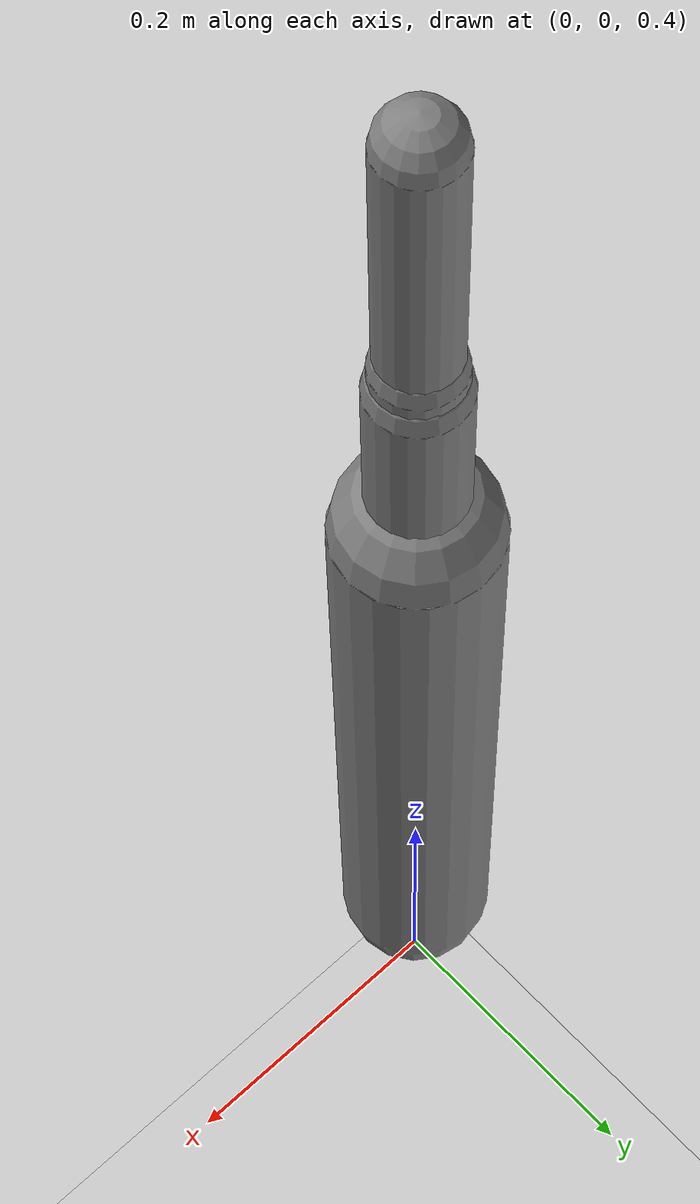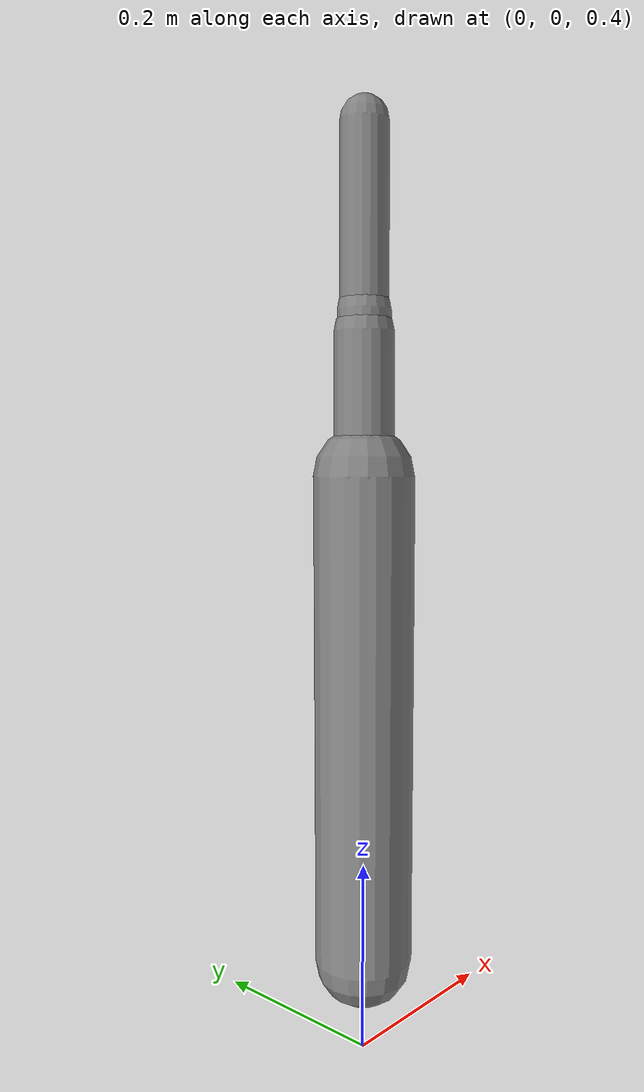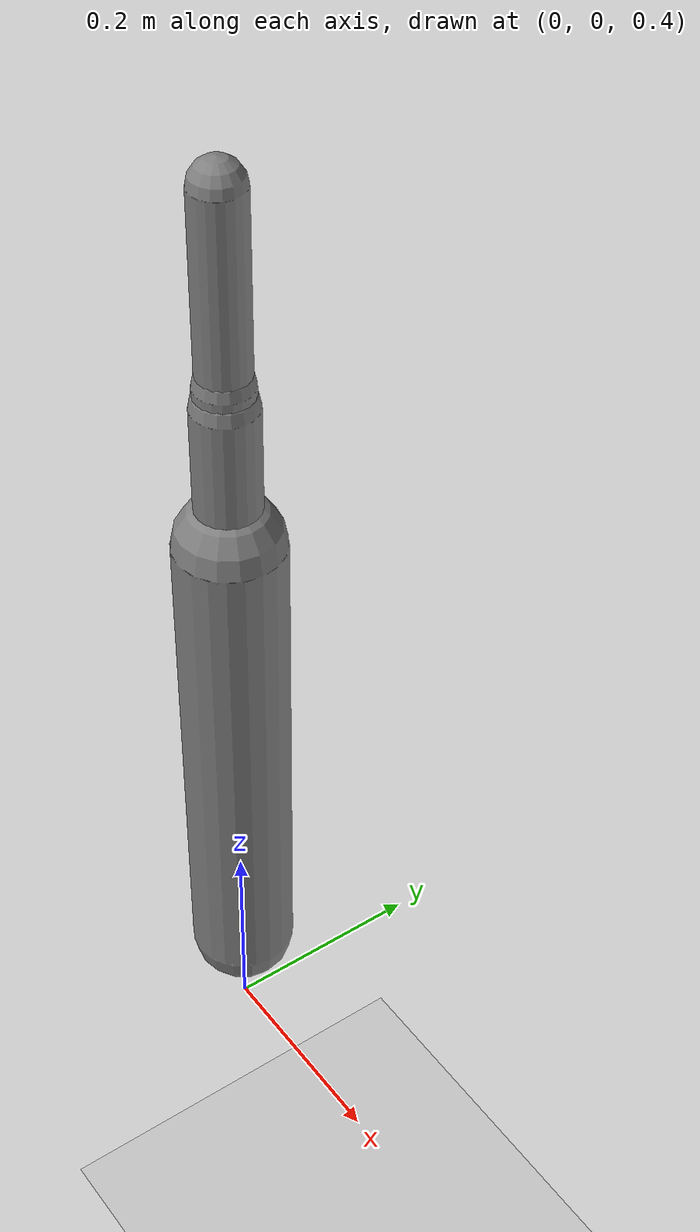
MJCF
<?xml version='1.0' encoding='UTF-8'?>
<mujoco model="RobotModel">
  <option gravity="0 0 -9.81" timestep="0.002" solver="CG" iterations="500" integrator="Euler"/>
  <worldbody>
    <geom name="Floor" type="plane" size="10 10 0.1" pos="0 0 0" rgba="0.8 0.8 0.8 1"/>
    <body name="Limb0" pos="0 0 0.5">
      <geom type="capsule" fromto="0 0 0 0 0 0.5" size="0.05" density="1000" contype="1" conaffinity="1"/>
      <body name="Limb0_628137e8" pos="0 0 0.5">
        <geom type="capsule" fromto="0 0 0 0 0 0.1583965440686873" size="0.026274507455519416" density="500.0" contype="1" conaffinity="1"/>
        <body name="Limb1_628137e8" pos="0 0 0.1583965440686873">
          <geom type="capsule" fromto="0 0 0 0 0 0.17192740146968158" size="0.023684349766088346" density="500.0" contype="1" conaffinity="1"/>
          <joint name="Joint_Limb0_628137e8_Limb1_628137e8_0" type="hinge" axis="1 0 0" range="-60 60"/>
        </body>
        <joint name="Joint_Limb0_Limb0_628137e8_0" type="hinge" axis="0 1 0" range="-60 60"/>
      </body>
      <body name="Limb2_628137e8" pos="0 0 0.5">
        <geom type="capsule" fromto="0 0 0 0 0 0.13495952287163845" size="0.021459868258517" density="500.0" contype="1" conaffinity="1"/>
        <joint name="Joint_Limb0_Limb2_628137e8_0" type="hinge" axis="0 1 0" range="-60 60"/>
      </body>
      <body name="Limb3_628137e8" pos="0 0 0.5">
        <geom type="capsule" fromto="0 0 0 0 0 0.13807559383432266" size="0.029450850574752115" density="500.0" contype="1" conaffinity="1"/>
        <joint name="Joint_Limb0_Limb3_628137e8_0" type="hinge" axis="0 1 0" range="-60 60"/>
      </body>
    </body>
  </worldbody>
  <actuator>
    <position name="position_Actuator_Joint_Limb0_Limb0_628137e8_0" joint="Joint_Limb0_Limb0_628137e8_0" gear="1.0"/>
    <position name="position_Actuator_Joint_Limb0_628137e8_Limb1_628137e8_0" joint="Joint_Limb0_628137e8_Limb1_628137e8_0" gear="1.0"/>
    <position name="position_Actuator_Joint_Limb0_Limb2_628137e8_0" joint="Joint_Limb0_Limb2_628137e8_0" gear="1.0"/>
    <position name="position_Actuator_Joint_Limb0_Limb3_628137e8_0" joint="Joint_Limb0_Limb3_628137e8_0" gear="1.0"/>
  </actuator>
</mujoco>
